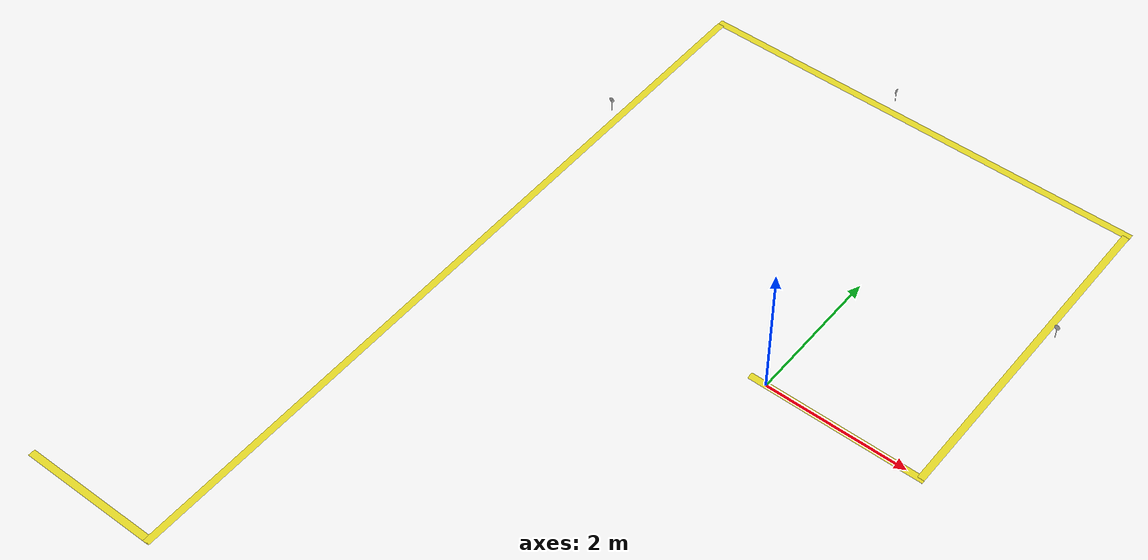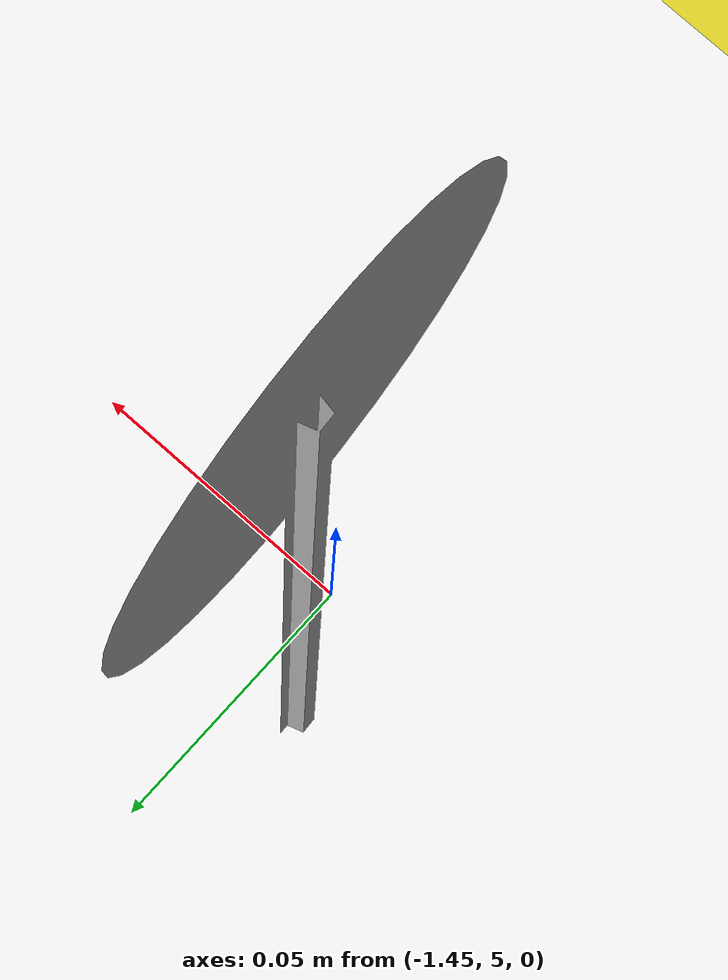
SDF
<sdf version="1.6">
 <world name="default">
  <light name="sun" type="directional">
   <pose>0 0 10 0 -0 0</pose>
   <diffuse>0.8 0.8 0.8 1</diffuse>
   <specular>0.1 0.1 0.1 1</specular>
   <attenuation>
    <range>1000</range>
    <constant>0.9</constant>
    <linear>0.01</linear>
    <quadratic>0.001</quadratic>
   </attenuation>
   <direction>-0.5 0.5 -1</direction>
  </light>
  <gravity>0 0 -9.8</gravity>
  <magnetic_field>6e-06 2.3e-05 -4.2e-05</magnetic_field>
  <atmosphere type="adiabatic"/>
  <physics name="default_physics" default="0" type="ode">
   <max_step_size>0.001</max_step_size>
   <real_time_factor>1</real_time_factor>
   <real_time_update_rate>1000</real_time_update_rate>
  </physics>
  <scene><ambient>0.4 0.4 0.4 1</ambient><background>0.7 0.7 0.7 1</background><shadows>1</shadows></scene>
  <spherical_coordinates>
   <surface_model>EARTH_WGS84</surface_model>
   <latitude_deg>0</latitude_deg>
   <longitude_deg>0</longitude_deg>
   <elevation>0</elevation>
   <heading_deg>0</heading_deg>
  </spherical_coordinates>
  <model name="yellow line_1">
   <static>1</static>
   <link name="link_ground">
    <collision name="collision">
     <geometry><plane><normal>0 0 1</normal><size>0.1 6.5</size></plane></geometry>
     <surface><friction><ode><mu>100</mu><mu2>50</mu2></ode></friction></surface>
    </collision>
    <visual name="visual_ground">
     <cast_shadows>0</cast_shadows>
     <geometry><plane><normal>0 0 1</normal><size>0.1 6.5</size></plane></geometry>
     <material>
      <script><uri>file://media/materials/scripts/gazebo.material</uri><name>Gazebo/Yellow</name></script>
     </material>
    </visual>
   </link>
   <pose>-1 4.83 0 0 -0 1.57</pose>
  </model>
  <model name="yellow line_2">
   <static>1</static>
   <link name="link_ground">
    <collision name="collision">
     <geometry><plane><normal>0 0 1</normal><size>0.1 11</size></plane></geometry>
     <surface><friction><ode><mu>100</mu><mu2>50</mu2></ode></friction></surface>
    </collision>
    <visual name="visual_ground">
     <cast_shadows>0</cast_shadows>
     <geometry><plane><normal>0 0 1</normal><size>0.1 11</size></plane></geometry>
     <material>
      <script><uri>file://media/materials/scripts/gazebo.material</uri><name>Gazebo/Yellow</name></script>
     </material>
    </visual>
   </link>
   <pose>-4.2 -0.71 0 0 -0 0</pose>
  </model>
  <model name="yellow line_3">
   <static>1</static>
   <link name="link_ground">
    <collision name="collision">
     <geometry><plane><normal>0 0 1</normal><size>0.1 2</size></plane></geometry>
     <surface><friction><ode><mu>100</mu><mu2>50</mu2></ode></friction></surface>
    </collision>
    <visual name="visual_ground">
     <cast_shadows>0</cast_shadows>
     <geometry><plane><normal>0 0 1</normal><size>0.1 2</size></plane></geometry>
     <material>
      <script><uri>file://media/materials/scripts/gazebo.material</uri><name>Gazebo/Yellow</name></script>
     </material>
    </visual>
   </link>
   <pose>-5.17 -6.16 0 0 -0 1.57</pose>
  </model>
  <model name="yellow line_5">
   <static>1</static>
   <link name="link_ground">
    <collision name="collision">
     <geometry><plane><normal>0 0 1</normal><size>0.1 4.8</size></plane></geometry>
     <surface><friction><ode><mu>100</mu><mu2>50</mu2></ode></friction></surface>
    </collision>
    <visual name="visual_ground">
     <cast_shadows>0</cast_shadows>
     <geometry><plane><normal>0 0 1</normal><size>0.1 4.8</size></plane></geometry>
     <material>
      <script><uri>file://media/materials/scripts/gazebo.material</uri><name>Gazebo/Yellow</name></script>
     </material>
    </visual>
   </link>
   <pose>2.19978 2.39516 0 0 -0 0</pose>
  </model>
  <model name="yellow line_6">
   <static>1</static>
   <link name="link_ground">
    <collision name="collision">
     <geometry><plane><normal>0 0 1</normal><size>0.1 2.5</size></plane></geometry>
     <surface><friction><ode><mu>100</mu><mu2>50</mu2></ode></friction></surface>
    </collision>
    <visual name="visual_ground">
     <cast_shadows>0</cast_shadows>
     <geometry><plane><normal>0 0 1</normal><size>0.1 2.5</size></plane></geometry>
     <material>
      <script><uri>file://media/materials/scripts/gazebo.material</uri><name>Gazebo/Yellow</name></script>
     </material>
    </visual>
   </link>
   <pose>1 0 0 0 -0 1.57</pose>
  </model>
  <model name="Speed limit 50">
   <static>1</static>
   <link name="link">
    <collision name="collision">
     <geometry>
      <mesh><scale>1 1 1</scale><uri>model://speed_limit_sign_50/meshes/speed_limit_sign.dae</uri></mesh>
     </geometry>
    </collision>
    <visual name="visual">
     <geometry>
      <mesh><scale>1 1 1</scale><uri>model://speed_limit_sign_50/meshes/speed_limit_sign.dae</uri></mesh>
     </geometry>
    </visual>
   </link>
   <pose>-1.45694 5.01959 0 0 0 -1.51146</pose>
  </model>
  <model name="Speed limit 110">
   <static>1</static>
   <link name="link">
    <collision name="collision">
     <geometry>
      <mesh><scale>1 1 1</scale><uri>model://speed_limit_sign_110/meshes/speed_limit_sign.dae</uri></mesh>
     </geometry>
    </collision>
    <visual name="visual">
     <geometry>
      <mesh><scale>1 1 1</scale><uri>model://speed_limit_sign_110/meshes/speed_limit_sign.dae</uri></mesh>
     </geometry>
    </visual>
   </link>
   <pose>-4.35248 2.51757 0 0 -0 0</pose>
  </model>
  <model name="Speed limit 40">
   <static>1</static>
   <link name="link">
    <collision name="collision">
     <geometry>
      <mesh><scale>1 1 1</scale><uri>model://speed_limit_sign_40/meshes/speed_limit_sign.dae</uri></mesh>
     </geometry>
    </collision>
    <visual name="visual">
     <geometry>
      <mesh><scale>1 1 1</scale><uri>model://speed_limit_sign_40/meshes/speed_limit_sign.dae</uri></mesh>
     </geometry>
    </visual>
   </link>
   <pose>2.33477 2.79169 0 0 0 -3.11922</pose>
  </model>
 </world>
</sdf>
